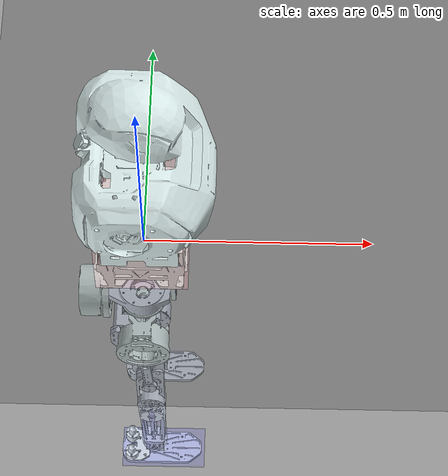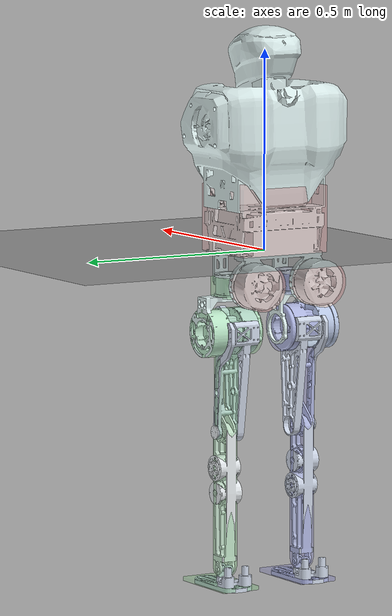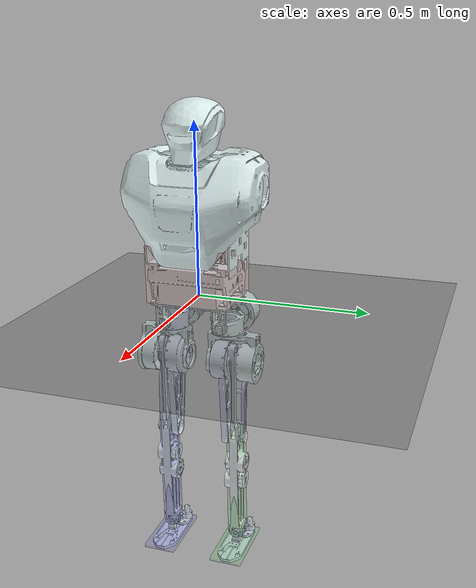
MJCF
<mujoco model="New_new_kuavo_3_3">
    <compiler angle="radian" autolimits="true" meshdir="../meshes/"/>
    <option timestep="0.001"/>
    <default>
        <joint limited="true" armature="0.01" damping="0.01"/>
        <motor ctrllimited="true" ctrlrange="-100 100"/>
        <geom contype="1" conaffinity="1" condim="1" solref="0.005 1"/>
        <equality solref="0.005 1"/>
        <default class="collision">
            <!-- User parameter for geoms is used to identify collision types -->
            <geom material="collision" contype="4" conaffinity="4" user="2" rgba="0.9 0.3 0.3 0.2"/>
            <default class="collision-left">
                <geom contype="1" conaffinity="2" rgba="0.3 0.9 0.3 0.2"/>
            </default>
            <default class="collision-right">
                <geom contype="2" conaffinity="1" rgba="0.3 0.3 0.9 0.2"/>
            </default>
        </default>
    </default>
    <asset>
        <texture type="skybox" builtin="gradient" width="128" height="128" rgb1="0.4 0.6 0.8" rgb2="0 0 0"/>
        <texture name="plane" type="2d" builtin="checker" rgb1="0.2 0.2 0.2" rgb2="0.3 0.3 0.3" width="512"
                 height="512"/>
        <material name="plane" reflectance="0.0" texture="plane" texrepeat="1 1" texuniform="true"/>
        <material name="collision" rgba="0.1 0.5 0.9 0"/>

        <mesh name="base_link" file="base_link.STL"/>
        <mesh name="l_leg_roll" file="l_leg_roll.STL"/>
        <mesh name="l_leg_yaw" file="l_leg_yaw.STL"/>
        <mesh name="l_leg_pitch" file="l_leg_pitch.STL"/>
        <mesh name="l_knee" file="l_knee.STL"/>
        <mesh name="l_foot_pitch" file="l_foot_pitch.STL"/>
        <mesh name="l_foot_roll" file="l_foot_roll.STL"/>
        <mesh name="r_leg_roll" file="r_leg_roll.STL"/>
        <mesh name="r_leg_yaw" file="r_leg_yaw.STL"/>
        <mesh name="r_leg_pitch" file="r_leg_pitch.STL"/>
        <mesh name="r_knee" file="r_knee.STL"/>
        <mesh name="r_foot_pitch" file="r_foot_pitch.STL"/>
        <mesh name="r_foot_roll" file="r_foot_roll.STL"/>
        <mesh name="l_arm_pitch" file="l_arm_pitch.STL"/>
        <mesh name="l_arm_roll" file="l_arm_roll.STL"/>
        <mesh name="l_arm_yaw" file="l_arm_yaw.STL"/>
        <mesh name="l_forearm_pitch" file="l_forearm_pitch.STL"/>
        <mesh name="l_forearm_yaw" file="l_forearm_yaw.STL"/>
        <mesh name="l_hand_roll" file="l_hand_roll.STL"/>
        <mesh name="l_hand_pitch" file="l_hand_pitch.STL"/>
        <mesh name="r_arm_pitch" file="r_arm_pitch.STL"/>
        <mesh name="r_arm_roll" file="r_arm_roll.STL"/>
        <mesh name="r_arm_yaw" file="r_arm_yaw.STL"/>
        <mesh name="r_forearm_pitch" file="r_forearm_pitch.STL"/>
        <mesh name="r_forearm_yaw" file="r_forearm_yaw.STL"/>
        <mesh name="r_hand_roll" file="r_hand_roll.STL"/>
        <mesh name="r_hand_pitch" file="r_hand_pitch.STL"/>
        <mesh name="real_camera_link" file="real_camera_link.STL"/>
    </asset>
    <worldbody>
        <geom name="floor" pos="0.001 0 0" size="100 10 .125" type="plane" material="plane" condim="3"
              conaffinity="15"/>
        <light mode="trackcom" pos="0 0 5" dir="0 0 -1"/>
        <light directional="true" pos="0 0 3" dir="0 0 -1" diffuse="0.2 0.2 0.2" specular="0 0 0"/>

        <body name="base_link">
            <site name="imu" size="0.01" pos="0.0 0 0.0"/>

            <inertial pos="-0.00681849 0.0015558 0.153596" quat="0.706333 0.706422 -0.0320727 0.0321375" mass="7.73058"
                      diaginertia="0.0445895 0.0373307 0.0223498"/>
            <joint name="dummy_joint" type="free"/>
            <geom type="mesh" contype="0" conaffinity="0" group="1" density="0" rgba="0.862745 0.933333 0.929412 1"
                  mesh="base_link"/>
            <geom pos="0.078507 0.0026635 0.47328" quat="0.953716 0 0.300708 0" type="mesh" contype="0" conaffinity="0"
                  group="1" density="0" rgba="0.8 0.2 0.2 1" mesh="real_camera_link"/>
            <geom type="box" size="0.1 0.12 0.085" pos="0 0 0.08" class="collision"/>
            <body name="l_leg_roll" pos="-0.0756149 0.087 -0.0720755">
                <inertial pos="0.0607643 0.000140341 0.00228372" quat="-0.000667135 0.698074 -0.000633625 0.716025"
                          mass="0.11853" diaginertia="0.000326574 0.000266847 0.000100382"/>
                <joint name="l_leg_roll" pos="0 0 0" axis="1 0 0" range="-3.14 3.14"/>
                <geom type="mesh" contype="0" conaffinity="0" group="1" density="0" rgba="0.862745 0.933333 0.929412 1"
                      mesh="l_leg_roll"/>
                <geom type="cylinder" size="0.06" fromto="-0.07 0 0 0.0 0 0" class="collision"/>
                <body name="l_leg_yaw" pos="0.0735 0 0.013">
                    <inertial pos="0.000290903 0.0405087 -0.100847" quat="0.711181 0.00318129 -0.0126042 0.702889"
                              mass="0.204053" diaginertia="0.000364139 0.000304318 0.000267233"/>
                    <joint name="l_leg_yaw" pos="0 0 0" axis="0 0 1" range="-3.14 3.14"/>
                    <geom type="mesh" contype="0" conaffinity="0" group="1" density="0"
                          rgba="0.862745 0.933333 0.929412 1" mesh="l_leg_yaw"/>
                    <geom type="cylinder" size="0.06" fromto="0 0 0 0 0 -0.05" class="collision-left"/>
                    <body name="l_leg_pitch" pos="0 0.094 -0.13645">
                        <inertial pos="-0.00528236 -0.087885 -0.056801" quat="0.677625 -0.0410299 -0.0428758 0.73301"
                                  mass="0.45065" diaginertia="0.00177986 0.0014985 0.000379212"/>
                        <joint name="l_leg_pitch" pos="0 0 0" axis="0 1 0" range="-3.14 3.14"/>
                        <geom type="mesh" contype="0" conaffinity="0" group="1" density="0"
                              rgba="0.807843 0.843137 0.905882 1" mesh="l_leg_pitch"/>
                        <geom type="capsule" size="0.03" fromto="0 -0.07 0 0 -0.07 -0.25" class="collision-left"/>
                        <geom type="cylinder" size="0.06" fromto="0 -0.14 0 0 0.00 0" class="collision-left"/>
                        <body name="l_knee" pos="0.00413596 -0.068639 -0.249966">
                            <inertial pos="0.000868874 -5.03011e-05 -0.133147"
                                      quat="0.708076 0.000612423 0.00689893 0.706102" mass="0.817175"
                                      diaginertia="0.00810869 0.00786468 0.00043979"/>
                            <joint name="l_knee" pos="0 0 0" axis="0 1 0" range="-3.14 3.14"/>
                            <geom type="mesh" contype="0" conaffinity="0" group="1" density="0"
                                  rgba="0.898039 0.917647 0.929412 1" mesh="l_knee"/>
                            <geom type="capsule" size="0.03" fromto="0 0 0 0 0 -0.34" class="collision-left"/>
                            <body name="l_foot_pitch" pos="9.39839e-05 0.021 -0.346142">
                                <inertial pos="-2.20949e-07 -0.0210002 0.000142422" quat="0.5 0.500027 -0.5 0.499973"
                                          mass="0.00898869" diaginertia="1.52124e-06 8.64758e-07 8.64758e-07"/>
                                <joint name="l_foot_pitch" pos="0 0 0" axis="0 1 0" range="-3.14 3.14"/>
                                <geom type="mesh" contype="0" conaffinity="0" group="1" density="0"
                                      rgba="0.807843 0.843137 0.905882 1" mesh="l_foot_pitch"/>
                                <body name="l_foot_roll" pos="0.021 -0.021 0.000142422">
                                    <inertial pos="-0.0432253 -8.83109e-06 -0.02319"
                                              quat="5.30343e-05 0.70865 2.4785e-05 0.70556" mass="0.485953"
                                              diaginertia="0.000765599 0.000645275 0.000157862"/>
                                    <joint name="l_foot_roll" pos="0 0 0" axis="1 0 0" range="-3.14 3.14"/>
                                    <geom type="mesh" contype="0" conaffinity="0" group="1" density="0"
                                          rgba="0.807843 0.843137 0.905882 1" mesh="l_foot_roll"/>
                                    <geom type="box" size="0.1 0.05 0.005" pos="0 0 -0.04" class="collision-left"/>
                                </body>
                            </body>
                        </body>
                    </body>
                </body>
            </body>
            <body name="r_leg_roll" pos="-0.0756149 -0.087 -0.0720755">
                <inertial pos="0.0607646 -0.000140366 0.00228377" quat="0.000666594 0.698074 0.000634567 0.716025"
                          mass="0.118531" diaginertia="0.000326578 0.000266849 0.000100382"/>
                <joint name="r_leg_roll" pos="0 0 0" axis="1 0 0" range="-3.14 3.14"/>
                <geom type="mesh" contype="0" conaffinity="0" group="1" density="0" rgba="0.807843 0.843137 0.905882 1"
                      mesh="r_leg_roll"/>
                <geom type="cylinder" size="0.06" fromto="-0.07 0 0 0.0 0 0" class="collision"/>
                <body name="r_leg_yaw" pos="0.0735 0 0.013">
                    <inertial pos="0.000290902 -0.0405087 -0.100847" quat="0.702889 -0.0126041 0.00318137 0.711181"
                              mass="0.204052" diaginertia="0.000364139 0.000304315 0.000267229"/>
                    <joint name="r_leg_yaw" pos="0 0 0" axis="0 0 1" range="-3.14 3.14"/>
                    <geom type="mesh" contype="0" conaffinity="0" group="1" density="0"
                          rgba="0.862745 0.933333 0.929412 1" mesh="r_leg_yaw"/>
                    <geom type="cylinder" size="0.06" fromto="0 0 0 0 0 -0.05" class="collision-right"/>
                    <body name="r_leg_pitch" pos="0 -0.094 -0.13645">
                        <inertial pos="-0.00530845 0.0879625 -0.0562054" quat="0.732997 -0.0428762 -0.0410294 0.677639"
                                  mass="0.44854" diaginertia="0.00177981 0.0014983 0.000379015"/>
                        <joint name="r_leg_pitch" pos="0 0 0" axis="0 1 0" range="-3.14 3.14"/>
                        <geom type="mesh" contype="0" conaffinity="0" group="1" density="0"
                              rgba="0.807843 0.843137 0.905882 1" mesh="r_leg_pitch"/>
                        <geom type="capsule" size="0.03" fromto="0 0.07 0 0 0.07 -0.25" class="collision-right"/>
                        <geom type="cylinder" size="0.06" fromto="0 0.14 0 0 0.00 0" class="collision-right"/>
                        <body name="r_knee" pos="0.00413596 0.06855 -0.249966">
                            <inertial pos="0.000566316 -0.000357175 -0.138852"
                                      quat="0.706218 0.00688574 0.000625585 0.707961" mass="0.345444"
                                      diaginertia="0.00291148 0.0028134 0.000171445"/>
                            <joint name="r_knee" pos="0 0 0" axis="0 1 0" range="-3.14 3.14"/>
                            <geom type="mesh" contype="0" conaffinity="0" group="1" density="0"
                                  rgba="0.807843 0.843137 0.905882 1" mesh="r_knee"/>
                            <geom type="capsule" size="0.03" fromto="0 0 0 0 0 -0.34" class="collision-right"/>
                            <body name="r_foot_pitch" pos="0 -0.021 -0.346">
                                <inertial pos="-2.20949e-07 0.0210002 0" quat="0.499974 0.5 -0.500026 0.5"
                                          mass="0.00898869" diaginertia="1.52124e-06 8.64758e-07 8.64758e-07"/>
                                <joint name="r_foot_pitch" pos="0 0 0" axis="0 1 0" range="-3.14 3.14"/>
                                <geom type="mesh" contype="0" conaffinity="0" group="1" density="0"
                                      rgba="0.807843 0.843137 0.905882 1" mesh="r_foot_pitch"/>
                                <body name="r_foot_roll" pos="0.021 0.021 0">
                                    <inertial pos="-0.0480333 6.50582e-06 -0.02084"
                                              quat="-6.19557e-05 0.711387 -6.76251e-06 0.7028" mass="0.235882"
                                              diaginertia="0.000291968 0.000241939 7.44384e-05"/>
                                    <joint name="r_foot_roll" pos="0 0 0" axis="1 0 0" range="-3.14 3.14"/>
                                    <geom type="mesh" contype="0" conaffinity="0" group="1" density="0"
                                          rgba="0.807843 0.843137 0.905882 1" mesh="r_foot_roll"/>
                                    <geom type="box" size="0.1 0.05 0.005" pos="0 0 -0.04" class="collision-right"/>
                                </body>
                            </body>
                        </body>
                    </body>
                </body>
            </body>
        </body>
    </worldbody>

    <actuator>
        <motor name="l_leg_roll" joint="l_leg_roll" ctrlrange="-100 100"/>
        <motor name="l_leg_yaw" joint="l_leg_yaw" ctrlrange="-100 100"/>
        <motor name="l_leg_pitch" joint="l_leg_pitch" ctrlrange="-100 100"/>
        <motor name="l_knee" joint="l_knee" ctrlrange="-100 100"/>
        <motor name="l_foot_pitch" joint="l_foot_pitch" ctrlrange="-100 100"/>
        <motor name="l_foot_roll" joint="l_foot_roll" ctrlrange="-100 100"/>
        <motor name="r_leg_roll" joint="r_leg_roll" ctrlrange="-100 100"/>
        <motor name="r_leg_yaw" joint="r_leg_yaw" ctrlrange="-100 100"/>
        <motor name="r_leg_pitch" joint="r_leg_pitch" ctrlrange="-100 100"/>
        <motor name="r_knee" joint="r_knee" ctrlrange="-100 100"/>
        <motor name="r_foot_pitch" joint="r_foot_pitch" ctrlrange="-100 100"/>
        <motor name="r_foot_roll" joint="r_foot_roll" ctrlrange="-100 100"/>
    </actuator>

    <sensor>
        <actuatorpos name="l_leg_roll_p" actuator="l_leg_roll" user="13"/>
        <actuatorpos name="l_leg_yaw_p" actuator="l_leg_yaw" user="13"/>
        <actuatorpos name="l_leg_pitch_p" actuator="l_leg_pitch" user="13"/>
        <actuatorpos name="l_knee_p" actuator="l_knee" user="13"/>
        <actuatorpos name="l_foot_pitch_p" actuator="l_foot_pitch" user="13"/>
        <actuatorpos name="l_foot_roll_p" actuator="l_foot_roll" user="13"/>
        <actuatorpos name="r_leg_roll_p" actuator="r_leg_roll" user="13"/>
        <actuatorpos name="r_leg_yaw_p" actuator="r_leg_yaw" user="13"/>
        <actuatorpos name="r_leg_pitch_p" actuator="r_leg_pitch" user="13"/>
        <actuatorpos name="r_knee_p" actuator="r_knee" user="13"/>
        <actuatorpos name="r_foot_pitch_p" actuator="r_foot_pitch" user="13"/>
        <actuatorpos name="r_foot_roll_p" actuator="r_foot_roll" user="13"/>

        <actuatorvel name="l_leg_roll_v" actuator="l_leg_roll" user="13"/>
        <actuatorvel name="l_leg_yaw_v" actuator="l_leg_yaw" user="13"/>
        <actuatorvel name="l_leg_pitch_v" actuator="l_leg_pitch" user="13"/>
        <actuatorvel name="l_knee_v" actuator="l_knee" user="13"/>
        <actuatorvel name="l_foot_pitch_v" actuator="l_foot_pitch" user="13"/>
        <actuatorvel name="l_foot_roll_v" actuator="l_foot_roll" user="13"/>
        <actuatorvel name="r_leg_roll_v" actuator="r_leg_roll" user="13"/>
        <actuatorvel name="r_leg_yaw_v" actuator="r_leg_yaw" user="13"/>
        <actuatorvel name="r_leg_pitch_v" actuator="r_leg_pitch" user="13"/>
        <actuatorvel name="r_knee_v" actuator="r_knee" user="13"/>
        <actuatorvel name="r_foot_pitch_v" actuator="r_foot_pitch" user="13"/>
        <actuatorvel name="r_foot_roll_v" actuator="r_foot_roll" user="13"/>

        <actuatorfrc name="l_leg_roll_f" actuator="l_leg_roll" user="13" noise="1e-3"/>
        <actuatorfrc name="l_leg_yaw_f" actuator="l_leg_yaw" user="13" noise="1e-3"/>
        <actuatorfrc name="l_leg_pitch_f" actuator="l_leg_pitch" user="13" noise="1e-3"/>
        <actuatorfrc name="l_knee_f" actuator="l_knee" user="13" noise="1e-3"/>
        <actuatorfrc name="l_foot_pitch_f" actuator="l_foot_pitch" user="13" noise="1e-3"/>
        <actuatorfrc name="l_foot_roll_f" actuator="l_foot_roll" user="13" noise="1e-3"/>
        <actuatorfrc name="r_leg_roll_f" actuator="r_leg_roll" user="13" noise="1e-3"/>
        <actuatorfrc name="r_leg_yaw_f" actuator="r_leg_yaw" user="13" noise="1e-3"/>
        <actuatorfrc name="r_leg_pitch_f" actuator="r_leg_pitch" user="13" noise="1e-3"/>
        <actuatorfrc name="r_knee_f" actuator="r_knee" user="13" noise="1e-3"/>
        <actuatorfrc name="r_foot_pitch_f" actuator="r_foot_pitch" user="13" noise="1e-3"/>
        <actuatorfrc name="r_foot_roll_f" actuator="r_foot_roll" user="13" noise="1e-3"/>

        <framequat name="orientation" objtype="site" noise="0.001" objname="imu"/>
        <framepos name="position" objtype="site" noise="0.001" objname="imu"/>
        <gyro name="angular-velocity" site="imu" noise="0.005" cutoff="34.9"/>
        <velocimeter name="linear-velocity" site="imu" noise="0.001" cutoff="30"/>
        <accelerometer name="linear-acceleration" site="imu" noise="0.005" cutoff="157"/>
        <magnetometer name="magnetometer" site="imu"/>

    </sensor>
</mujoco>
